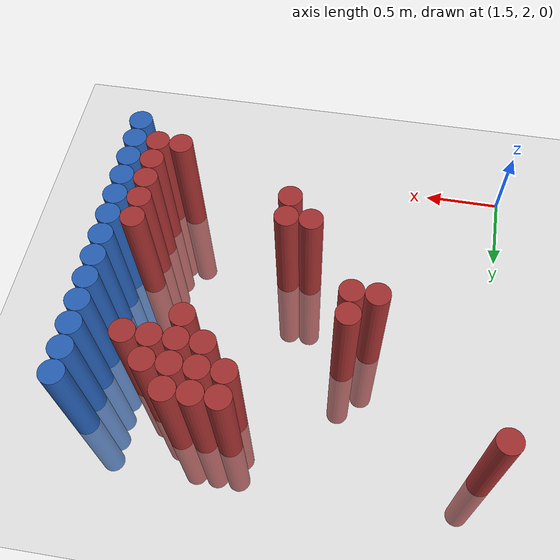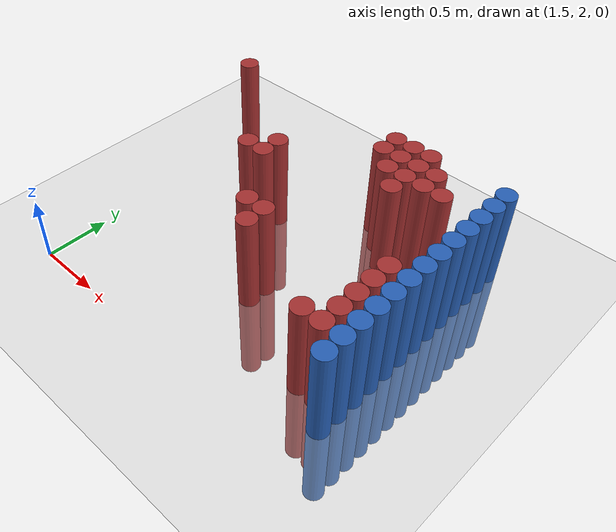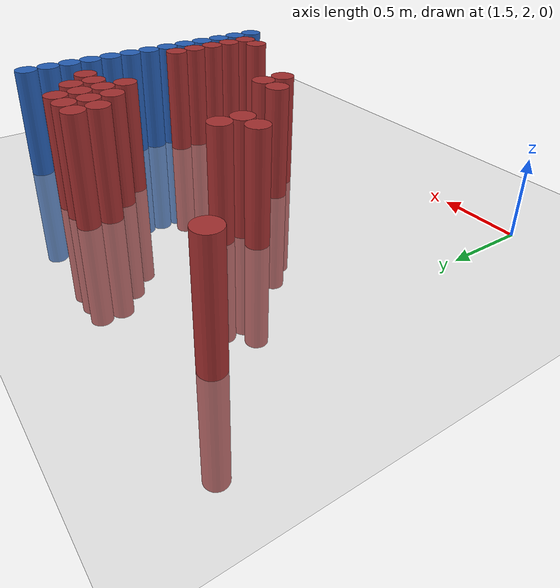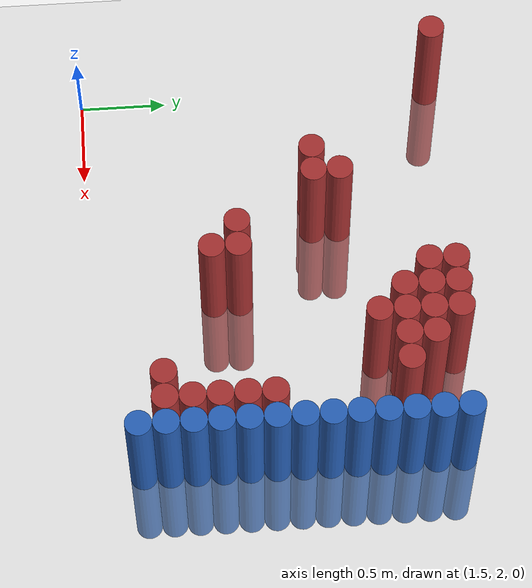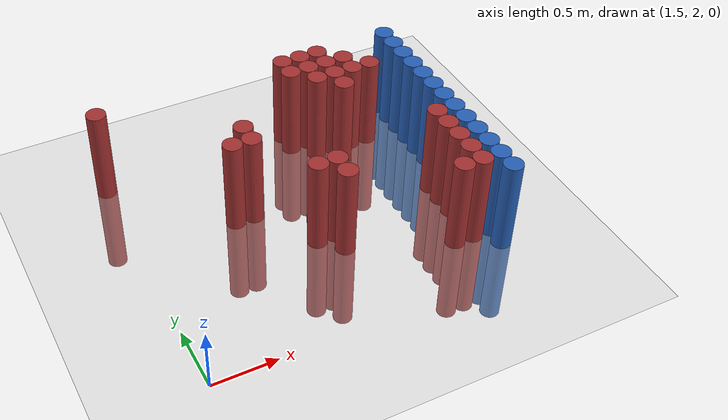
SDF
<sdf version="1.6">
 <world name="default">
  <model name="ground_plane">
   <static>1</static>
   <link name="link">
    <collision name="collision">
     <geometry><plane><normal>0 0 1</normal><size>100 100</size></plane></geometry>
     <surface><friction><ode><mu>100</mu><mu2>50</mu2></ode></friction></surface>
    </collision>
    <visual name="visual">
     <cast_shadows>0</cast_shadows>
     <geometry><plane><normal>0 0 1</normal><size>100 100</size></plane></geometry>
     <material>
      <script><uri>file://media/materials/scripts/gazebo.material</uri><name>Gazebo/Grey</name></script>
     </material>
    </visual>
   </link>
  </model>
  <model name="unit_cylinder_146">
   <static>1</static>
   <pose>3.925000 2.425000 0.000000 0.000000 0.000000 0.000000</pose>
   <link name="link">
    <inertial>
     <mass>1</mass>
     <inertia><ixx>0.145833</ixx><ixy>0</ixy><ixz>0</ixz><iyy>0.145833</iyy><iyz>0</iyz><izz>0.125</izz></inertia>
    </inertial>
    <collision name="collision">
     <geometry><cylinder><radius>0.075000</radius><length>1.5</length></cylinder></geometry>
    </collision>
    <visual name="visual">
     <geometry><cylinder><radius>0.075000</radius><length>1.5</length></cylinder></geometry>
     <material>
      <ambient>0.152000 0.379000 0.720000 1</ambient>
      <diffuse>0.152000 0.379000 0.720000 1</diffuse>
     </material>
     <material>
      <script><name>Gazebo/Grey</name><uri>file://media/materials/scripts/gazebo.material</uri></script>
     </material>
    </visual>
   </link>
  </model>
  <model name="unit_cylinder_148">
   <static>1</static>
   <pose>3.925000 2.575000 0.000000 0.000000 0.000000 0.000000</pose>
   <link name="link">
    <inertial>
     <mass>1</mass>
     <inertia><ixx>0.145833</ixx><ixy>0</ixy><ixz>0</ixz><iyy>0.145833</iyy><iyz>0</iyz><izz>0.125</izz></inertia>
    </inertial>
    <collision name="collision">
     <geometry><cylinder><radius>0.075000</radius><length>1.5</length></cylinder></geometry>
    </collision>
    <visual name="visual">
     <geometry><cylinder><radius>0.075000</radius><length>1.5</length></cylinder></geometry>
     <material>
      <ambient>0.152000 0.379000 0.720000 1</ambient>
      <diffuse>0.152000 0.379000 0.720000 1</diffuse>
     </material>
     <material>
      <script><name>Gazebo/Grey</name><uri>file://media/materials/scripts/gazebo.material</uri></script>
     </material>
    </visual>
   </link>
  </model>
  <model name="unit_cylinder_150">
   <static>1</static>
   <pose>3.925000 2.725000 0.000000 0.000000 0.000000 0.000000</pose>
   <link name="link">
    <inertial>
     <mass>1</mass>
     <inertia><ixx>0.145833</ixx><ixy>0</ixy><ixz>0</ixz><iyy>0.145833</iyy><iyz>0</iyz><izz>0.125</izz></inertia>
    </inertial>
    <collision name="collision">
     <geometry><cylinder><radius>0.075000</radius><length>1.5</length></cylinder></geometry>
    </collision>
    <visual name="visual">
     <geometry><cylinder><radius>0.075000</radius><length>1.5</length></cylinder></geometry>
     <material>
      <ambient>0.152000 0.379000 0.720000 1</ambient>
      <diffuse>0.152000 0.379000 0.720000 1</diffuse>
     </material>
     <material>
      <script><name>Gazebo/Grey</name><uri>file://media/materials/scripts/gazebo.material</uri></script>
     </material>
    </visual>
   </link>
  </model>
  <model name="unit_cylinder_152">
   <static>1</static>
   <pose>3.925000 2.875000 0.000000 0.000000 0.000000 0.000000</pose>
   <link name="link">
    <inertial>
     <mass>1</mass>
     <inertia><ixx>0.145833</ixx><ixy>0</ixy><ixz>0</ixz><iyy>0.145833</iyy><iyz>0</iyz><izz>0.125</izz></inertia>
    </inertial>
    <collision name="collision">
     <geometry><cylinder><radius>0.075000</radius><length>1.5</length></cylinder></geometry>
    </collision>
    <visual name="visual">
     <geometry><cylinder><radius>0.075000</radius><length>1.5</length></cylinder></geometry>
     <material>
      <ambient>0.152000 0.379000 0.720000 1</ambient>
      <diffuse>0.152000 0.379000 0.720000 1</diffuse>
     </material>
     <material>
      <script><name>Gazebo/Grey</name><uri>file://media/materials/scripts/gazebo.material</uri></script>
     </material>
    </visual>
   </link>
  </model>
  <model name="unit_cylinder_154">
   <static>1</static>
   <pose>3.925000 3.025000 0.000000 0.000000 0.000000 0.000000</pose>
   <link name="link">
    <inertial>
     <mass>1</mass>
     <inertia><ixx>0.145833</ixx><ixy>0</ixy><ixz>0</ixz><iyy>0.145833</iyy><iyz>0</iyz><izz>0.125</izz></inertia>
    </inertial>
    <collision name="collision">
     <geometry><cylinder><radius>0.075000</radius><length>1.5</length></cylinder></geometry>
    </collision>
    <visual name="visual">
     <geometry><cylinder><radius>0.075000</radius><length>1.5</length></cylinder></geometry>
     <material>
      <ambient>0.152000 0.379000 0.720000 1</ambient>
      <diffuse>0.152000 0.379000 0.720000 1</diffuse>
     </material>
     <material>
      <script><name>Gazebo/Grey</name><uri>file://media/materials/scripts/gazebo.material</uri></script>
     </material>
    </visual>
   </link>
  </model>
  <model name="unit_cylinder_156">
   <static>1</static>
   <pose>3.925000 3.175000 0.000000 0.000000 0.000000 0.000000</pose>
   <link name="link">
    <inertial>
     <mass>1</mass>
     <inertia><ixx>0.145833</ixx><ixy>0</ixy><ixz>0</ixz><iyy>0.145833</iyy><iyz>0</iyz><izz>0.125</izz></inertia>
    </inertial>
    <collision name="collision">
     <geometry><cylinder><radius>0.075000</radius><length>1.5</length></cylinder></geometry>
    </collision>
    <visual name="visual">
     <geometry><cylinder><radius>0.075000</radius><length>1.5</length></cylinder></geometry>
     <material>
      <ambient>0.152000 0.379000 0.720000 1</ambient>
      <diffuse>0.152000 0.379000 0.720000 1</diffuse>
     </material>
     <material>
      <script><name>Gazebo/Grey</name><uri>file://media/materials/scripts/gazebo.material</uri></script>
     </material>
    </visual>
   </link>
  </model>
  <model name="unit_cylinder_158">
   <static>1</static>
   <pose>3.925000 3.325000 0.000000 0.000000 0.000000 0.000000</pose>
   <link name="link">
    <inertial>
     <mass>1</mass>
     <inertia><ixx>0.145833</ixx><ixy>0</ixy><ixz>0</ixz><iyy>0.145833</iyy><iyz>0</iyz><izz>0.125</izz></inertia>
    </inertial>
    <collision name="collision">
     <geometry><cylinder><radius>0.075000</radius><length>1.5</length></cylinder></geometry>
    </collision>
    <visual name="visual">
     <geometry><cylinder><radius>0.075000</radius><length>1.5</length></cylinder></geometry>
     <material>
      <ambient>0.152000 0.379000 0.720000 1</ambient>
      <diffuse>0.152000 0.379000 0.720000 1</diffuse>
     </material>
     <material>
      <script><name>Gazebo/Grey</name><uri>file://media/materials/scripts/gazebo.material</uri></script>
     </material>
    </visual>
   </link>
  </model>
  <model name="unit_cylinder_160">
   <static>1</static>
   <pose>3.925000 3.475000 0.000000 0.000000 0.000000 0.000000</pose>
   <link name="link">
    <inertial>
     <mass>1</mass>
     <inertia><ixx>0.145833</ixx><ixy>0</ixy><ixz>0</ixz><iyy>0.145833</iyy><iyz>0</iyz><izz>0.125</izz></inertia>
    </inertial>
    <collision name="collision">
     <geometry><cylinder><radius>0.075000</radius><length>1.5</length></cylinder></geometry>
    </collision>
    <visual name="visual">
     <geometry><cylinder><radius>0.075000</radius><length>1.5</length></cylinder></geometry>
     <material>
      <ambient>0.152000 0.379000 0.720000 1</ambient>
      <diffuse>0.152000 0.379000 0.720000 1</diffuse>
     </material>
     <material>
      <script><name>Gazebo/Grey</name><uri>file://media/materials/scripts/gazebo.material</uri></script>
     </material>
    </visual>
   </link>
  </model>
  <model name="unit_cylinder_162">
   <static>1</static>
   <pose>3.925000 3.625000 0.000000 0.000000 0.000000 0.000000</pose>
   <link name="link">
    <inertial>
     <mass>1</mass>
     <inertia><ixx>0.145833</ixx><ixy>0</ixy><ixz>0</ixz><iyy>0.145833</iyy><iyz>0</iyz><izz>0.125</izz></inertia>
    </inertial>
    <collision name="collision">
     <geometry><cylinder><radius>0.075000</radius><length>1.5</length></cylinder></geometry>
    </collision>
    <visual name="visual">
     <geometry><cylinder><radius>0.075000</radius><length>1.5</length></cylinder></geometry>
     <material>
      <ambient>0.152000 0.379000 0.720000 1</ambient>
      <diffuse>0.152000 0.379000 0.720000 1</diffuse>
     </material>
     <material>
      <script><name>Gazebo/Grey</name><uri>file://media/materials/scripts/gazebo.material</uri></script>
     </material>
    </visual>
   </link>
  </model>
  <model name="unit_cylinder_164">
   <static>1</static>
   <pose>3.925000 3.775000 0.000000 0.000000 0.000000 0.000000</pose>
   <link name="link">
    <inertial>
     <mass>1</mass>
     <inertia><ixx>0.145833</ixx><ixy>0</ixy><ixz>0</ixz><iyy>0.145833</iyy><iyz>0</iyz><izz>0.125</izz></inertia>
    </inertial>
    <collision name="collision">
     <geometry><cylinder><radius>0.075000</radius><length>1.5</length></cylinder></geometry>
    </collision>
    <visual name="visual">
     <geometry><cylinder><radius>0.075000</radius><length>1.5</length></cylinder></geometry>
     <material>
      <ambient>0.152000 0.379000 0.720000 1</ambient>
      <diffuse>0.152000 0.379000 0.720000 1</diffuse>
     </material>
     <material>
      <script><name>Gazebo/Grey</name><uri>file://media/materials/scripts/gazebo.material</uri></script>
     </material>
    </visual>
   </link>
  </model>
  <model name="unit_cylinder_166">
   <static>1</static>
   <pose>3.925000 3.925000 0.000000 0.000000 0.000000 0.000000</pose>
   <link name="link">
    <inertial>
     <mass>1</mass>
     <inertia><ixx>0.145833</ixx><ixy>0</ixy><ixz>0</ixz><iyy>0.145833</iyy><iyz>0</iyz><izz>0.125</izz></inertia>
    </inertial>
    <collision name="collision">
     <geometry><cylinder><radius>0.075000</radius><length>1.5</length></cylinder></geometry>
    </collision>
    <visual name="visual">
     <geometry><cylinder><radius>0.075000</radius><length>1.5</length></cylinder></geometry>
     <material>
      <ambient>0.152000 0.379000 0.720000 1</ambient>
      <diffuse>0.152000 0.379000 0.720000 1</diffuse>
     </material>
     <material>
      <script><name>Gazebo/Grey</name><uri>file://media/materials/scripts/gazebo.material</uri></script>
     </material>
    </visual>
   </link>
  </model>
  <model name="unit_cylinder_168">
   <static>1</static>
   <pose>3.925000 4.075000 0.000000 0.000000 0.000000 0.000000</pose>
   <link name="link">
    <inertial>
     <mass>1</mass>
     <inertia><ixx>0.145833</ixx><ixy>0</ixy><ixz>0</ixz><iyy>0.145833</iyy><iyz>0</iyz><izz>0.125</izz></inertia>
    </inertial>
    <collision name="collision">
     <geometry><cylinder><radius>0.075000</radius><length>1.5</length></cylinder></geometry>
    </collision>
    <visual name="visual">
     <geometry><cylinder><radius>0.075000</radius><length>1.5</length></cylinder></geometry>
     <material>
      <ambient>0.152000 0.379000 0.720000 1</ambient>
      <diffuse>0.152000 0.379000 0.720000 1</diffuse>
     </material>
     <material>
      <script><name>Gazebo/Grey</name><uri>file://media/materials/scripts/gazebo.material</uri></script>
     </material>
    </visual>
   </link>
  </model>
  <model name="unit_cylinder_409">
   <static>1</static>
   <pose>1.525000 4.075000 0.000000 0.000000 0.000000 0.000000</pose>
   <link name="link">
    <inertial>
     <mass>1</mass>
     <inertia><ixx>0.145833</ixx><ixy>0</ixy><ixz>0</ixz><iyy>0.145833</iyy><iyz>0</iyz><izz>0.125</izz></inertia>
    </inertial>
    <collision name="collision">
     <geometry><cylinder><radius>0.075000</radius><length>1.5</length></cylinder></geometry>
    </collision>
    <visual name="visual">
     <geometry><cylinder><radius>0.075000</radius><length>1.5</length></cylinder></geometry>
     <material>
      <ambient>0.648000 0.192000 0.192000 1</ambient>
      <diffuse>0.648000 0.192000 0.192000 1</diffuse>
     </material>
     <material>
      <script><name>Gazebo/Grey</name><uri>file://media/materials/scripts/gazebo.material</uri></script>
     </material>
    </visual>
   </link>
  </model>
  <model name="unit_cylinder_417">
   <static>1</static>
   <pose>2.275000 3.325000 0.000000 0.000000 0.000000 0.000000</pose>
   <link name="link">
    <inertial>
     <mass>1</mass>
     <inertia><ixx>0.145833</ixx><ixy>0</ixy><ixz>0</ixz><iyy>0.145833</iyy><iyz>0</iyz><izz>0.125</izz></inertia>
    </inertial>
    <collision name="collision">
     <geometry><cylinder><radius>0.075000</radius><length>1.5</length></cylinder></geometry>
    </collision>
    <visual name="visual">
     <geometry><cylinder><radius>0.075000</radius><length>1.5</length></cylinder></geometry>
     <material>
      <ambient>0.648000 0.192000 0.192000 1</ambient>
      <diffuse>0.648000 0.192000 0.192000 1</diffuse>
     </material>
     <material>
      <script><name>Gazebo/Grey</name><uri>file://media/materials/scripts/gazebo.material</uri></script>
     </material>
    </visual>
   </link>
  </model>
  <model name="unit_cylinder_418">
   <static>1</static>
   <pose>2.425000 3.325000 0.000000 0.000000 0.000000 0.000000</pose>
   <link name="link">
    <inertial>
     <mass>1</mass>
     <inertia><ixx>0.145833</ixx><ixy>0</ixy><ixz>0</ixz><iyy>0.145833</iyy><iyz>0</iyz><izz>0.125</izz></inertia>
    </inertial>
    <collision name="collision">
     <geometry><cylinder><radius>0.075000</radius><length>1.5</length></cylinder></geometry>
    </collision>
    <visual name="visual">
     <geometry><cylinder><radius>0.075000</radius><length>1.5</length></cylinder></geometry>
     <material>
      <ambient>0.648000 0.192000 0.192000 1</ambient>
      <diffuse>0.648000 0.192000 0.192000 1</diffuse>
     </material>
     <material>
      <script><name>Gazebo/Grey</name><uri>file://media/materials/scripts/gazebo.material</uri></script>
     </material>
    </visual>
   </link>
  </model>
  <model name="unit_cylinder_419">
   <static>1</static>
   <pose>2.425000 3.475000 0.000000 0.000000 0.000000 0.000000</pose>
   <link name="link">
    <inertial>
     <mass>1</mass>
     <inertia><ixx>0.145833</ixx><ixy>0</ixy><ixz>0</ixz><iyy>0.145833</iyy><iyz>0</iyz><izz>0.125</izz></inertia>
    </inertial>
    <collision name="collision">
     <geometry><cylinder><radius>0.075000</radius><length>1.5</length></cylinder></geometry>
    </collision>
    <visual name="visual">
     <geometry><cylinder><radius>0.075000</radius><length>1.5</length></cylinder></geometry>
     <material>
      <ambient>0.648000 0.192000 0.192000 1</ambient>
      <diffuse>0.648000 0.192000 0.192000 1</diffuse>
     </material>
     <material>
      <script><name>Gazebo/Grey</name><uri>file://media/materials/scripts/gazebo.material</uri></script>
     </material>
    </visual>
   </link>
  </model>
  <model name="unit_cylinder_429">
   <static>1</static>
   <pose>2.725000 2.875000 0.000000 0.000000 0.000000 0.000000</pose>
   <link name="link">
    <inertial>
     <mass>1</mass>
     <inertia><ixx>0.145833</ixx><ixy>0</ixy><ixz>0</ixz><iyy>0.145833</iyy><iyz>0</iyz><izz>0.125</izz></inertia>
    </inertial>
    <collision name="collision">
     <geometry><cylinder><radius>0.075000</radius><length>1.5</length></cylinder></geometry>
    </collision>
    <visual name="visual">
     <geometry><cylinder><radius>0.075000</radius><length>1.5</length></cylinder></geometry>
     <material>
      <ambient>0.648000 0.192000 0.192000 1</ambient>
      <diffuse>0.648000 0.192000 0.192000 1</diffuse>
     </material>
     <material>
      <script><name>Gazebo/Grey</name><uri>file://media/materials/scripts/gazebo.material</uri></script>
     </material>
    </visual>
   </link>
  </model>
  <model name="unit_cylinder_435">
   <static>1</static>
   <pose>2.875000 2.725000 0.000000 0.000000 0.000000 0.000000</pose>
   <link name="link">
    <inertial>
     <mass>1</mass>
     <inertia><ixx>0.145833</ixx><ixy>0</ixy><ixz>0</ixz><iyy>0.145833</iyy><iyz>0</iyz><izz>0.125</izz></inertia>
    </inertial>
    <collision name="collision">
     <geometry><cylinder><radius>0.075000</radius><length>1.5</length></cylinder></geometry>
    </collision>
    <visual name="visual">
     <geometry><cylinder><radius>0.075000</radius><length>1.5</length></cylinder></geometry>
     <material>
      <ambient>0.648000 0.192000 0.192000 1</ambient>
      <diffuse>0.648000 0.192000 0.192000 1</diffuse>
     </material>
     <material>
      <script><name>Gazebo/Grey</name><uri>file://media/materials/scripts/gazebo.material</uri></script>
     </material>
    </visual>
   </link>
  </model>
  <model name="unit_cylinder_436">
   <static>1</static>
   <pose>2.875000 2.875000 0.000000 0.000000 0.000000 0.000000</pose>
   <link name="link">
    <inertial>
     <mass>1</mass>
     <inertia><ixx>0.145833</ixx><ixy>0</ixy><ixz>0</ixz><iyy>0.145833</iyy><iyz>0</iyz><izz>0.125</izz></inertia>
    </inertial>
    <collision name="collision">
     <geometry><cylinder><radius>0.075000</radius><length>1.5</length></cylinder></geometry>
    </collision>
    <visual name="visual">
     <geometry><cylinder><radius>0.075000</radius><length>1.5</length></cylinder></geometry>
     <material>
      <ambient>0.648000 0.192000 0.192000 1</ambient>
      <diffuse>0.648000 0.192000 0.192000 1</diffuse>
     </material>
     <material>
      <script><name>Gazebo/Grey</name><uri>file://media/materials/scripts/gazebo.material</uri></script>
     </material>
    </visual>
   </link>
  </model>
  <model name="unit_cylinder_440">
   <static>1</static>
   <pose>3.025000 3.925000 0.000000 0.000000 0.000000 0.000000</pose>
   <link name="link">
    <inertial>
     <mass>1</mass>
     <inertia><ixx>0.145833</ixx><ixy>0</ixy><ixz>0</ixz><iyy>0.145833</iyy><iyz>0</iyz><izz>0.125</izz></inertia>
    </inertial>
    <collision name="collision">
     <geometry><cylinder><radius>0.075000</radius><length>1.5</length></cylinder></geometry>
    </collision>
    <visual name="visual">
     <geometry><cylinder><radius>0.075000</radius><length>1.5</length></cylinder></geometry>
     <material>
      <ambient>0.648000 0.192000 0.192000 1</ambient>
      <diffuse>0.648000 0.192000 0.192000 1</diffuse>
     </material>
     <material>
      <script><name>Gazebo/Grey</name><uri>file://media/materials/scripts/gazebo.material</uri></script>
     </material>
    </visual>
   </link>
  </model>
  <model name="unit_cylinder_441">
   <static>1</static>
   <pose>3.025000 4.075000 0.000000 0.000000 0.000000 0.000000</pose>
   <link name="link">
    <inertial>
     <mass>1</mass>
     <inertia><ixx>0.145833</ixx><ixy>0</ixy><ixz>0</ixz><iyy>0.145833</iyy><iyz>0</iyz><izz>0.125</izz></inertia>
    </inertial>
    <collision name="collision">
     <geometry><cylinder><radius>0.075000</radius><length>1.5</length></cylinder></geometry>
    </collision>
    <visual name="visual">
     <geometry><cylinder><radius>0.075000</radius><length>1.5</length></cylinder></geometry>
     <material>
      <ambient>0.648000 0.192000 0.192000 1</ambient>
      <diffuse>0.648000 0.192000 0.192000 1</diffuse>
     </material>
     <material>
      <script><name>Gazebo/Grey</name><uri>file://media/materials/scripts/gazebo.material</uri></script>
     </material>
    </visual>
   </link>
  </model>
  <model name="unit_cylinder_446">
   <static>1</static>
   <pose>3.175000 3.775000 0.000000 0.000000 0.000000 0.000000</pose>
   <link name="link">
    <inertial>
     <mass>1</mass>
     <inertia><ixx>0.145833</ixx><ixy>0</ixy><ixz>0</ixz><iyy>0.145833</iyy><iyz>0</iyz><izz>0.125</izz></inertia>
    </inertial>
    <collision name="collision">
     <geometry><cylinder><radius>0.075000</radius><length>1.5</length></cylinder></geometry>
    </collision>
    <visual name="visual">
     <geometry><cylinder><radius>0.075000</radius><length>1.5</length></cylinder></geometry>
     <material>
      <ambient>0.648000 0.192000 0.192000 1</ambient>
      <diffuse>0.648000 0.192000 0.192000 1</diffuse>
     </material>
     <material>
      <script><name>Gazebo/Grey</name><uri>file://media/materials/scripts/gazebo.material</uri></script>
     </material>
    </visual>
   </link>
  </model>
  <model name="unit_cylinder_447">
   <static>1</static>
   <pose>3.175000 3.925000 0.000000 0.000000 0.000000 0.000000</pose>
   <link name="link">
    <inertial>
     <mass>1</mass>
     <inertia><ixx>0.145833</ixx><ixy>0</ixy><ixz>0</ixz><iyy>0.145833</iyy><iyz>0</iyz><izz>0.125</izz></inertia>
    </inertial>
    <collision name="collision">
     <geometry><cylinder><radius>0.075000</radius><length>1.5</length></cylinder></geometry>
    </collision>
    <visual name="visual">
     <geometry><cylinder><radius>0.075000</radius><length>1.5</length></cylinder></geometry>
     <material>
      <ambient>0.648000 0.192000 0.192000 1</ambient>
      <diffuse>0.648000 0.192000 0.192000 1</diffuse>
     </material>
     <material>
      <script><name>Gazebo/Grey</name><uri>file://media/materials/scripts/gazebo.material</uri></script>
     </material>
    </visual>
   </link>
  </model>
  <model name="unit_cylinder_448">
   <static>1</static>
   <pose>3.175000 4.075000 0.000000 0.000000 0.000000 0.000000</pose>
   <link name="link">
    <inertial>
     <mass>1</mass>
     <inertia><ixx>0.145833</ixx><ixy>0</ixy><ixz>0</ixz><iyy>0.145833</iyy><iyz>0</iyz><izz>0.125</izz></inertia>
    </inertial>
    <collision name="collision">
     <geometry><cylinder><radius>0.075000</radius><length>1.5</length></cylinder></geometry>
    </collision>
    <visual name="visual">
     <geometry><cylinder><radius>0.075000</radius><length>1.5</length></cylinder></geometry>
     <material>
      <ambient>0.648000 0.192000 0.192000 1</ambient>
      <diffuse>0.648000 0.192000 0.192000 1</diffuse>
     </material>
     <material>
      <script><name>Gazebo/Grey</name><uri>file://media/materials/scripts/gazebo.material</uri></script>
     </material>
    </visual>
   </link>
  </model>
  <model name="unit_cylinder_454">
   <static>1</static>
   <pose>3.325000 3.625000 0.000000 0.000000 0.000000 0.000000</pose>
   <link name="link">
    <inertial>
     <mass>1</mass>
     <inertia><ixx>0.145833</ixx><ixy>0</ixy><ixz>0</ixz><iyy>0.145833</iyy><iyz>0</iyz><izz>0.125</izz></inertia>
    </inertial>
    <collision name="collision">
     <geometry><cylinder><radius>0.075000</radius><length>1.5</length></cylinder></geometry>
    </collision>
    <visual name="visual">
     <geometry><cylinder><radius>0.075000</radius><length>1.5</length></cylinder></geometry>
     <material>
      <ambient>0.648000 0.192000 0.192000 1</ambient>
      <diffuse>0.648000 0.192000 0.192000 1</diffuse>
     </material>
     <material>
      <script><name>Gazebo/Grey</name><uri>file://media/materials/scripts/gazebo.material</uri></script>
     </material>
    </visual>
   </link>
  </model>
  <model name="unit_cylinder_455">
   <static>1</static>
   <pose>3.325000 3.775000 0.000000 0.000000 0.000000 0.000000</pose>
   <link name="link">
    <inertial>
     <mass>1</mass>
     <inertia><ixx>0.145833</ixx><ixy>0</ixy><ixz>0</ixz><iyy>0.145833</iyy><iyz>0</iyz><izz>0.125</izz></inertia>
    </inertial>
    <collision name="collision">
     <geometry><cylinder><radius>0.075000</radius><length>1.5</length></cylinder></geometry>
    </collision>
    <visual name="visual">
     <geometry><cylinder><radius>0.075000</radius><length>1.5</length></cylinder></geometry>
     <material>
      <ambient>0.648000 0.192000 0.192000 1</ambient>
      <diffuse>0.648000 0.192000 0.192000 1</diffuse>
     </material>
     <material>
      <script><name>Gazebo/Grey</name><uri>file://media/materials/scripts/gazebo.material</uri></script>
     </material>
    </visual>
   </link>
  </model>
  <model name="unit_cylinder_456">
   <static>1</static>
   <pose>3.325000 3.925000 0.000000 0.000000 0.000000 0.000000</pose>
   <link name="link">
    <inertial>
     <mass>1</mass>
     <inertia><ixx>0.145833</ixx><ixy>0</ixy><ixz>0</ixz><iyy>0.145833</iyy><iyz>0</iyz><izz>0.125</izz></inertia>
    </inertial>
    <collision name="collision">
     <geometry><cylinder><radius>0.075000</radius><length>1.5</length></cylinder></geometry>
    </collision>
    <visual name="visual">
     <geometry><cylinder><radius>0.075000</radius><length>1.5</length></cylinder></geometry>
     <material>
      <ambient>0.648000 0.192000 0.192000 1</ambient>
      <diffuse>0.648000 0.192000 0.192000 1</diffuse>
     </material>
     <material>
      <script><name>Gazebo/Grey</name><uri>file://media/materials/scripts/gazebo.material</uri></script>
     </material>
    </visual>
   </link>
  </model>
  <model name="unit_cylinder_457">
   <static>1</static>
   <pose>3.325000 4.075000 0.000000 0.000000 0.000000 0.000000</pose>
   <link name="link">
    <inertial>
     <mass>1</mass>
     <inertia><ixx>0.145833</ixx><ixy>0</ixy><ixz>0</ixz><iyy>0.145833</iyy><iyz>0</iyz><izz>0.125</izz></inertia>
    </inertial>
    <collision name="collision">
     <geometry><cylinder><radius>0.075000</radius><length>1.5</length></cylinder></geometry>
    </collision>
    <visual name="visual">
     <geometry><cylinder><radius>0.075000</radius><length>1.5</length></cylinder></geometry>
     <material>
      <ambient>0.648000 0.192000 0.192000 1</ambient>
      <diffuse>0.648000 0.192000 0.192000 1</diffuse>
     </material>
     <material>
      <script><name>Gazebo/Grey</name><uri>file://media/materials/scripts/gazebo.material</uri></script>
     </material>
    </visual>
   </link>
  </model>
  <model name="unit_cylinder_464">
   <static>1</static>
   <pose>3.475000 3.775000 0.000000 0.000000 0.000000 0.000000</pose>
   <link name="link">
    <inertial>
     <mass>1</mass>
     <inertia><ixx>0.145833</ixx><ixy>0</ixy><ixz>0</ixz><iyy>0.145833</iyy><iyz>0</iyz><izz>0.125</izz></inertia>
    </inertial>
    <collision name="collision">
     <geometry><cylinder><radius>0.075000</radius><length>1.5</length></cylinder></geometry>
    </collision>
    <visual name="visual">
     <geometry><cylinder><radius>0.075000</radius><length>1.5</length></cylinder></geometry>
     <material>
      <ambient>0.648000 0.192000 0.192000 1</ambient>
      <diffuse>0.648000 0.192000 0.192000 1</diffuse>
     </material>
     <material>
      <script><name>Gazebo/Grey</name><uri>file://media/materials/scripts/gazebo.material</uri></script>
     </material>
    </visual>
   </link>
  </model>
  <model name="unit_cylinder_465">
   <static>1</static>
   <pose>3.475000 3.925000 0.000000 0.000000 0.000000 0.000000</pose>
   <link name="link">
    <inertial>
     <mass>1</mass>
     <inertia><ixx>0.145833</ixx><ixy>0</ixy><ixz>0</ixz><iyy>0.145833</iyy><iyz>0</iyz><izz>0.125</izz></inertia>
    </inertial>
    <collision name="collision">
     <geometry><cylinder><radius>0.075000</radius><length>1.5</length></cylinder></geometry>
    </collision>
    <visual name="visual">
     <geometry><cylinder><radius>0.075000</radius><length>1.5</length></cylinder></geometry>
     <material>
      <ambient>0.648000 0.192000 0.192000 1</ambient>
      <diffuse>0.648000 0.192000 0.192000 1</diffuse>
     </material>
     <material>
      <script><name>Gazebo/Grey</name><uri>file://media/materials/scripts/gazebo.material</uri></script>
     </material>
    </visual>
   </link>
  </model>
  <model name="unit_cylinder_475">
   <static>1</static>
   <pose>3.625000 2.425000 0.000000 0.000000 0.000000 0.000000</pose>
   <link name="link">
    <inertial>
     <mass>1</mass>
     <inertia><ixx>0.145833</ixx><ixy>0</ixy><ixz>0</ixz><iyy>0.145833</iyy><iyz>0</iyz><izz>0.125</izz></inertia>
    </inertial>
    <collision name="collision">
     <geometry><cylinder><radius>0.075000</radius><length>1.5</length></cylinder></geometry>
    </collision>
    <visual name="visual">
     <geometry><cylinder><radius>0.075000</radius><length>1.5</length></cylinder></geometry>
     <material>
      <ambient>0.648000 0.192000 0.192000 1</ambient>
      <diffuse>0.648000 0.192000 0.192000 1</diffuse>
     </material>
     <material>
      <script><name>Gazebo/Grey</name><uri>file://media/materials/scripts/gazebo.material</uri></script>
     </material>
    </visual>
   </link>
  </model>
  <model name="unit_cylinder_476">
   <static>1</static>
   <pose>3.625000 3.775000 0.000000 0.000000 0.000000 0.000000</pose>
   <link name="link">
    <inertial>
     <mass>1</mass>
     <inertia><ixx>0.145833</ixx><ixy>0</ixy><ixz>0</ixz><iyy>0.145833</iyy><iyz>0</iyz><izz>0.125</izz></inertia>
    </inertial>
    <collision name="collision">
     <geometry><cylinder><radius>0.075000</radius><length>1.5</length></cylinder></geometry>
    </collision>
    <visual name="visual">
     <geometry><cylinder><radius>0.075000</radius><length>1.5</length></cylinder></geometry>
     <material>
      <ambient>0.648000 0.192000 0.192000 1</ambient>
      <diffuse>0.648000 0.192000 0.192000 1</diffuse>
     </material>
     <material>
      <script><name>Gazebo/Grey</name><uri>file://media/materials/scripts/gazebo.material</uri></script>
     </material>
    </visual>
   </link>
  </model>
  <model name="unit_cylinder_486">
   <static>1</static>
   <pose>3.775000 2.425000 0.000000 0.000000 0.000000 0.000000</pose>
   <link name="link">
    <inertial>
     <mass>1</mass>
     <inertia><ixx>0.145833</ixx><ixy>0</ixy><ixz>0</ixz><iyy>0.145833</iyy><iyz>0</iyz><izz>0.125</izz></inertia>
    </inertial>
    <collision name="collision">
     <geometry><cylinder><radius>0.075000</radius><length>1.5</length></cylinder></geometry>
    </collision>
    <visual name="visual">
     <geometry><cylinder><radius>0.075000</radius><length>1.5</length></cylinder></geometry>
     <material>
      <ambient>0.648000 0.192000 0.192000 1</ambient>
      <diffuse>0.648000 0.192000 0.192000 1</diffuse>
     </material>
     <material>
      <script><name>Gazebo/Grey</name><uri>file://media/materials/scripts/gazebo.material</uri></script>
     </material>
    </visual>
   </link>
  </model>
  <model name="unit_cylinder_487">
   <static>1</static>
   <pose>3.775000 2.575000 0.000000 0.000000 0.000000 0.000000</pose>
   <link name="link">
    <inertial>
     <mass>1</mass>
     <inertia><ixx>0.145833</ixx><ixy>0</ixy><ixz>0</ixz><iyy>0.145833</iyy><iyz>0</iyz><izz>0.125</izz></inertia>
    </inertial>
    <collision name="collision">
     <geometry><cylinder><radius>0.075000</radius><length>1.5</length></cylinder></geometry>
    </collision>
    <visual name="visual">
     <geometry><cylinder><radius>0.075000</radius><length>1.5</length></cylinder></geometry>
     <material>
      <ambient>0.648000 0.192000 0.192000 1</ambient>
      <diffuse>0.648000 0.192000 0.192000 1</diffuse>
     </material>
     <material>
      <script><name>Gazebo/Grey</name><uri>file://media/materials/scripts/gazebo.material</uri></script>
     </material>
    </visual>
   </link>
  </model>
  <model name="unit_cylinder_488">
   <static>1</static>
   <pose>3.775000 2.725000 0.000000 0.000000 0.000000 0.000000</pose>
   <link name="link">
    <inertial>
     <mass>1</mass>
     <inertia><ixx>0.145833</ixx><ixy>0</ixy><ixz>0</ixz><iyy>0.145833</iyy><iyz>0</iyz><izz>0.125</izz></inertia>
    </inertial>
    <collision name="collision">
     <geometry><cylinder><radius>0.075000</radius><length>1.5</length></cylinder></geometry>
    </collision>
    <visual name="visual">
     <geometry><cylinder><radius>0.075000</radius><length>1.5</length></cylinder></geometry>
     <material>
      <ambient>0.648000 0.192000 0.192000 1</ambient>
      <diffuse>0.648000 0.192000 0.192000 1</diffuse>
     </material>
     <material>
      <script><name>Gazebo/Grey</name><uri>file://media/materials/scripts/gazebo.material</uri></script>
     </material>
    </visual>
   </link>
  </model>
  <model name="unit_cylinder_489">
   <static>1</static>
   <pose>3.775000 2.875000 0.000000 0.000000 0.000000 0.000000</pose>
   <link name="link">
    <inertial>
     <mass>1</mass>
     <inertia><ixx>0.145833</ixx><ixy>0</ixy><ixz>0</ixz><iyy>0.145833</iyy><iyz>0</iyz><izz>0.125</izz></inertia>
    </inertial>
    <collision name="collision">
     <geometry><cylinder><radius>0.075000</radius><length>1.5</length></cylinder></geometry>
    </collision>
    <visual name="visual">
     <geometry><cylinder><radius>0.075000</radius><length>1.5</length></cylinder></geometry>
     <material>
      <ambient>0.648000 0.192000 0.192000 1</ambient>
      <diffuse>0.648000 0.192000 0.192000 1</diffuse>
     </material>
     <material>
      <script><name>Gazebo/Grey</name><uri>file://media/materials/scripts/gazebo.material</uri></script>
     </material>
    </visual>
   </link>
  </model>
  <model name="unit_cylinder_490">
   <static>1</static>
   <pose>3.775000 3.025000 0.000000 0.000000 0.000000 0.000000</pose>
   <link name="link">
    <inertial>
     <mass>1</mass>
     <inertia><ixx>0.145833</ixx><ixy>0</ixy><ixz>0</ixz><iyy>0.145833</iyy><iyz>0</iyz><izz>0.125</izz></inertia>
    </inertial>
    <collision name="collision">
     <geometry><cylinder><radius>0.075000</radius><length>1.5</length></cylinder></geometry>
    </collision>
    <visual name="visual">
     <geometry><cylinder><radius>0.075000</radius><length>1.5</length></cylinder></geometry>
     <material>
      <ambient>0.648000 0.192000 0.192000 1</ambient>
      <diffuse>0.648000 0.192000 0.192000 1</diffuse>
     </material>
     <material>
      <script><name>Gazebo/Grey</name><uri>file://media/materials/scripts/gazebo.material</uri></script>
     </material>
    </visual>
   </link>
  </model>
  <model name="unit_cylinder_525">
   <static>1</static>
   <pose>3.925000 2.275000 0.000000 0.000000 0.000000 0.000000</pose>
   <link name="link">
    <inertial>
     <mass>1</mass>
     <inertia><ixx>0.145833</ixx><ixy>0</ixy><ixz>0</ixz><iyy>0.145833</iyy><iyz>0</iyz><izz>0.125</izz></inertia>
    </inertial>
    <collision name="collision">
     <geometry><cylinder><radius>0.075000</radius><length>1.5</length></cylinder></geometry>
    </collision>
    <visual name="visual">
     <geometry><cylinder><radius>0.075000</radius><length>1.5</length></cylinder></geometry>
     <material>
      <ambient>0.152000 0.379000 0.720000 1</ambient>
      <diffuse>0.152000 0.379000 0.720000 1</diffuse>
     </material>
     <material>
      <script><name>Gazebo/Grey</name><uri>file://media/materials/scripts/gazebo.material</uri></script>
     </material>
    </visual>
   </link>
  </model>
  <model name="unit_cylinder_526">
   <static>1</static>
   <pose>3.925000 2.425000 0.000000 0.000000 0.000000 0.000000</pose>
   <link name="link">
    <inertial>
     <mass>1</mass>
     <inertia><ixx>0.145833</ixx><ixy>0</ixy><ixz>0</ixz><iyy>0.145833</iyy><iyz>0</iyz><izz>0.125</izz></inertia>
    </inertial>
    <collision name="collision">
     <geometry><cylinder><radius>0.075000</radius><length>1.5</length></cylinder></geometry>
    </collision>
    <visual name="visual">
     <geometry><cylinder><radius>0.075000</radius><length>1.5</length></cylinder></geometry>
     <material>
      <ambient>0.152000 0.379000 0.720000 1</ambient>
      <diffuse>0.152000 0.379000 0.720000 1</diffuse>
     </material>
     <material>
      <script><name>Gazebo/Grey</name><uri>file://media/materials/scripts/gazebo.material</uri></script>
     </material>
    </visual>
   </link>
  </model>
  <model name="unit_cylinder_527">
   <static>1</static>
   <pose>3.925000 2.575000 0.000000 0.000000 0.000000 0.000000</pose>
   <link name="link">
    <inertial>
     <mass>1</mass>
     <inertia><ixx>0.145833</ixx><ixy>0</ixy><ixz>0</ixz><iyy>0.145833</iyy><iyz>0</iyz><izz>0.125</izz></inertia>
    </inertial>
    <collision name="collision">
     <geometry><cylinder><radius>0.075000</radius><length>1.5</length></cylinder></geometry>
    </collision>
    <visual name="visual">
     <geometry><cylinder><radius>0.075000</radius><length>1.5</length></cylinder></geometry>
     <material>
      <ambient>0.152000 0.379000 0.720000 1</ambient>
      <diffuse>0.152000 0.379000 0.720000 1</diffuse>
     </material>
     <material>
      <script><name>Gazebo/Grey</name><uri>file://media/materials/scripts/gazebo.material</uri></script>
     </material>
    </visual>
   </link>
  </model>
  <model name="unit_cylinder_528">
   <static>1</static>
   <pose>3.925000 2.725000 0.000000 0.000000 0.000000 0.000000</pose>
   <link name="link">
    <inertial>
     <mass>1</mass>
     <inertia><ixx>0.145833</ixx><ixy>0</ixy><ixz>0</ixz><iyy>0.145833</iyy><iyz>0</iyz><izz>0.125</izz></inertia>
    </inertial>
    <collision name="collision">
     <geometry><cylinder><radius>0.075000</radius><length>1.5</length></cylinder></geometry>
    </collision>
    <visual name="visual">
     <geometry><cylinder><radius>0.075000</radius><length>1.5</length></cylinder></geometry>
     <material>
      <ambient>0.152000 0.379000 0.720000 1</ambient>
      <diffuse>0.152000 0.379000 0.720000 1</diffuse>
     </material>
     <material>
      <script><name>Gazebo/Grey</name><uri>file://media/materials/scripts/gazebo.material</uri></script>
     </material>
    </visual>
   </link>
  </model>
  <model name="unit_cylinder_529">
   <static>1</static>
   <pose>3.925000 2.875000 0.000000 0.000000 0.000000 0.000000</pose>
   <link name="link">
    <inertial>
     <mass>1</mass>
     <inertia><ixx>0.145833</ixx><ixy>0</ixy><ixz>0</ixz><iyy>0.145833</iyy><iyz>0</iyz><izz>0.125</izz></inertia>
    </inertial>
    <collision name="collision">
     <geometry><cylinder><radius>0.075000</radius><length>1.5</length></cylinder></geometry>
    </collision>
    <visual name="visual">
     <geometry><cylinder><radius>0.075000</radius><length>1.5</length></cylinder></geometry>
     <material>
      <ambient>0.152000 0.379000 0.720000 1</ambient>
      <diffuse>0.152000 0.379000 0.720000 1</diffuse>
     </material>
     <material>
      <script><name>Gazebo/Grey</name><uri>file://media/materials/scripts/gazebo.material</uri></script>
     </material>
    </visual>
   </link>
  </model>
  <model name="unit_cylinder_530">
   <static>1</static>
   <pose>3.925000 3.025000 0.000000 0.000000 0.000000 0.000000</pose>
   <link name="link">
    <inertial>
     <mass>1</mass>
     <inertia><ixx>0.145833</ixx><ixy>0</ixy><ixz>0</ixz><iyy>0.145833</iyy><iyz>0</iyz><izz>0.125</izz></inertia>
    </inertial>
    <collision name="collision">
     <geometry><cylinder><radius>0.075000</radius><length>1.5</length></cylinder></geometry>
    </collision>
    <visual name="visual">
     <geometry><cylinder><radius>0.075000</radius><length>1.5</length></cylinder></geometry>
     <material>
      <ambient>0.152000 0.379000 0.720000 1</ambient>
      <diffuse>0.152000 0.379000 0.720000 1</diffuse>
     </material>
     <material>
      <script><name>Gazebo/Grey</name><uri>file://media/materials/scripts/gazebo.material</uri></script>
     </material>
    </visual>
   </link>
  </model>
  <model name="unit_cylinder_531">
   <static>1</static>
   <pose>3.925000 3.175000 0.000000 0.000000 0.000000 0.000000</pose>
   <link name="link">
    <inertial>
     <mass>1</mass>
     <inertia><ixx>0.145833</ixx><ixy>0</ixy><ixz>0</ixz><iyy>0.145833</iyy><iyz>0</iyz><izz>0.125</izz></inertia>
    </inertial>
    <collision name="collision">
     <geometry><cylinder><radius>0.075000</radius><length>1.5</length></cylinder></geometry>
    </collision>
    <visual name="visual">
     <geometry><cylinder><radius>0.075000</radius><length>1.5</length></cylinder></geometry>
     <material>
      <ambient>0.152000 0.379000 0.720000 1</ambient>
      <diffuse>0.152000 0.379000 0.720000 1</diffuse>
     </material>
     <material>
      <script><name>Gazebo/Grey</name><uri>file://media/materials/scripts/gazebo.material</uri></script>
     </material>
    </visual>
   </link>
  </model>
  <model name="unit_cylinder_532">
   <static>1</static>
   <pose>3.925000 3.325000 0.000000 0.000000 0.000000 0.000000</pose>
   <link name="link">
    <inertial>
     <mass>1</mass>
     <inertia><ixx>0.145833</ixx><ixy>0</ixy><ixz>0</ixz><iyy>0.145833</iyy><iyz>0</iyz><izz>0.125</izz></inertia>
    </inertial>
    <collision name="collision">
     <geometry><cylinder><radius>0.075000</radius><length>1.5</length></cylinder></geometry>
    </collision>
    <visual name="visual">
     <geometry><cylinder><radius>0.075000</radius><length>1.5</length></cylinder></geometry>
     <material>
      <ambient>0.152000 0.379000 0.720000 1</ambient>
      <diffuse>0.152000 0.379000 0.720000 1</diffuse>
     </material>
     <material>
      <script><name>Gazebo/Grey</name><uri>file://media/materials/scripts/gazebo.material</uri></script>
     </material>
    </visual>
   </link>
  </model>
  <model name="unit_cylinder_533">
   <static>1</static>
   <pose>3.925000 3.475000 0.000000 0.000000 0.000000 0.000000</pose>
   <link name="link">
    <inertial>
     <mass>1</mass>
     <inertia><ixx>0.145833</ixx><ixy>0</ixy><ixz>0</ixz><iyy>0.145833</iyy><iyz>0</iyz><izz>0.125</izz></inertia>
    </inertial>
    <collision name="collision">
     <geometry><cylinder><radius>0.075000</radius><length>1.5</length></cylinder></geometry>
    </collision>
    <visual name="visual">
     <geometry><cylinder><radius>0.075000</radius><length>1.5</length></cylinder></geometry>
     <material>
      <ambient>0.152000 0.379000 0.720000 1</ambient>
      <diffuse>0.152000 0.379000 0.720000 1</diffuse>
     </material>
     <material>
      <script><name>Gazebo/Grey</name><uri>file://media/materials/scripts/gazebo.material</uri></script>
     </material>
    </visual>
   </link>
  </model>
  <model name="unit_cylinder_534">
   <static>1</static>
   <pose>3.925000 3.625000 0.000000 0.000000 0.000000 0.000000</pose>
   <link name="link">
    <inertial>
     <mass>1</mass>
     <inertia><ixx>0.145833</ixx><ixy>0</ixy><ixz>0</ixz><iyy>0.145833</iyy><iyz>0</iyz><izz>0.125</izz></inertia>
    </inertial>
    <collision name="collision">
     <geometry><cylinder><radius>0.075000</radius><length>1.5</length></cylinder></geometry>
    </collision>
    <visual name="visual">
     <geometry><cylinder><radius>0.075000</radius><length>1.5</length></cylinder></geometry>
     <material>
      <ambient>0.152000 0.379000 0.720000 1</ambient>
      <diffuse>0.152000 0.379000 0.720000 1</diffuse>
     </material>
     <material>
      <script><name>Gazebo/Grey</name><uri>file://media/materials/scripts/gazebo.material</uri></script>
     </material>
    </visual>
   </link>
  </model>
  <model name="unit_cylinder_535">
   <static>1</static>
   <pose>3.925000 3.775000 0.000000 0.000000 0.000000 0.000000</pose>
   <link name="link">
    <inertial>
     <mass>1</mass>
     <inertia><ixx>0.145833</ixx><ixy>0</ixy><ixz>0</ixz><iyy>0.145833</iyy><iyz>0</iyz><izz>0.125</izz></inertia>
    </inertial>
    <collision name="collision">
     <geometry><cylinder><radius>0.075000</radius><length>1.5</length></cylinder></geometry>
    </collision>
    <visual name="visual">
     <geometry><cylinder><radius>0.075000</radius><length>1.5</length></cylinder></geometry>
     <material>
      <ambient>0.152000 0.379000 0.720000 1</ambient>
      <diffuse>0.152000 0.379000 0.720000 1</diffuse>
     </material>
     <material>
      <script><name>Gazebo/Grey</name><uri>file://media/materials/scripts/gazebo.material</uri></script>
     </material>
    </visual>
   </link>
  </model>
  <model name="unit_cylinder_536">
   <static>1</static>
   <pose>3.925000 3.925000 0.000000 0.000000 0.000000 0.000000</pose>
   <link name="link">
    <inertial>
     <mass>1</mass>
     <inertia><ixx>0.145833</ixx><ixy>0</ixy><ixz>0</ixz><iyy>0.145833</iyy><iyz>0</iyz><izz>0.125</izz></inertia>
    </inertial>
    <collision name="collision">
     <geometry><cylinder><radius>0.075000</radius><length>1.5</length></cylinder></geometry>
    </collision>
    <visual name="visual">
     <geometry><cylinder><radius>0.075000</radius><length>1.5</length></cylinder></geometry>
     <material>
      <ambient>0.152000 0.379000 0.720000 1</ambient>
      <diffuse>0.152000 0.379000 0.720000 1</diffuse>
     </material>
     <material>
      <script><name>Gazebo/Grey</name><uri>file://media/materials/scripts/gazebo.material</uri></script>
     </material>
    </visual>
   </link>
  </model>
 </world>
</sdf>
